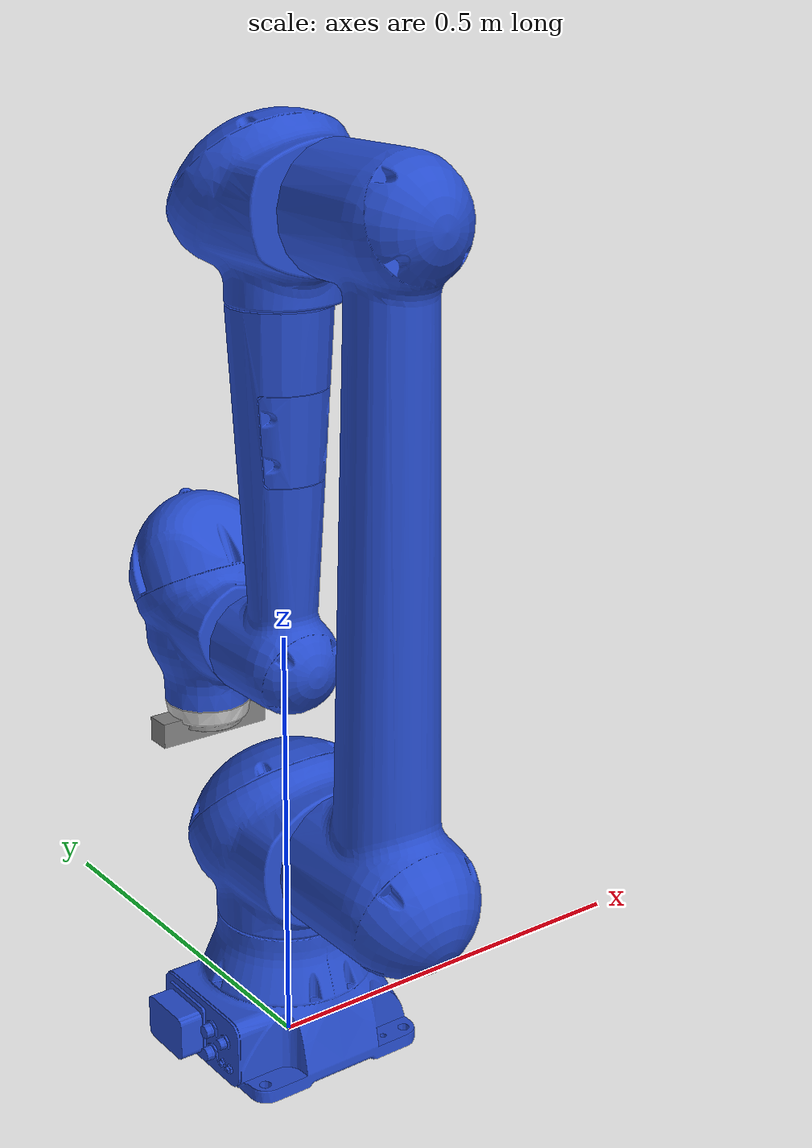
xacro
<?xml version="1.0" ?>
<robot name="motoman_hc10" xmlns:xacro="http://ros.org/wiki/xacro">
  <xacro:include filename="$(find motoman_hc10_support)/urdf/hc10_macro.xacro" />
  <xacro:motoman_hc10 prefix=""/>
  <xacro:include filename="$(find motoman_hc10_support)/urdf/hc10_gazebo.xacro"/>
  <xacro:include filename="$(find motoman_hc10_support)/urdf/hc10_cam.xacro"/>
  <xacro:add_cam parent_link="tool0"/>
</robot>

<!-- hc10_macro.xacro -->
<robot xmlns:xacro="http://ros.org/wiki/xacro">
  <xacro:macro name="motoman_hc10" params="prefix">
    <xacro:include filename="$(find motoman_resources)/urdf/common_materials.xacro"/>

    <!-- link list -->
    <link name="world"/>
      <inertial>
        <origin xyz="0 0 0" rpy="0 0 0"/>
        <mass value="0.1"/>
        <inertia ixx="0.03" ixy="0.03" ixz="0.03" iyy="0.0" iyz="0.0" izz="0.0"/>
      </inertial>
    <link name="${prefix}base_link">
      <inertial>
        <origin xyz="0 0 0" rpy="0 0 0"/>
        <mass value="0.1"/>
        <inertia ixx="0.03" ixy="0.03" ixz="0.03" iyy="0.0" iyz="0.0" izz="0.0"/>
      </inertial>
      <visual>
        <geometry>
          <mesh filename="package://motoman_hc10_support/meshes/hc10/visual/base_link.dae"/>
        </geometry>
        <xacro:material_yaskawa_blue/>
      </visual>
      <collision>
        <geometry>
          <mesh filename="package://motoman_hc10_support/meshes/hc10/collision/base_link.stl"/>
        </geometry>
      </collision>
    </link>
    <gazebo reference="${prefix}base_link">
      <material>Gazebo/Blue</material>
      <mu1>0.2</mu1>
      <mu2>0.2</mu2>
    </gazebo>

    <link name="${prefix}link_1_s">
      <inertial>
        <origin xyz="0 0 0" rpy="0 0 0"/>
        <mass value="0.1"/>
        <inertia ixx="0.03" ixy="0.03" ixz="0.03" iyy="0.0" iyz="0.0" izz="0.0"/>
      </inertial>
      <visual>
        <geometry>
          <mesh filename="package://motoman_hc10_support/meshes/hc10/visual/link_1_s.dae"/>
        </geometry>
        <xacro:material_yaskawa_blue/>
      </visual>
      <collision>
        <geometry>
          <mesh filename="package://motoman_hc10_support/meshes/hc10/collision/link_1_s.stl"/>
        </geometry>
      </collision>
    </link>
    <gazebo reference="${prefix}link_1_s">
      <material>Gazebo/Blue</material>
      <mu1>0.2</mu1>
      <mu2>0.2</mu2>
    </gazebo>

    <link name="${prefix}link_2_l">
      <inertial>
        <origin xyz="0 0 0" rpy="0 0 0"/>
        <mass value="0.1"/>
        <inertia ixx="0.03" ixy="0.03" ixz="0.03" iyy="0.0" iyz="0.0" izz="0.0"/>
      </inertial>
      <visual>
        <geometry>
          <mesh filename="package://motoman_hc10_support/meshes/hc10/visual/link_2_l.dae"/>
        </geometry>
        <xacro:material_yaskawa_blue/>
      </visual>
      <collision>
        <geometry>
          <mesh filename="package://motoman_hc10_support/meshes/hc10/collision/link_2_l.stl"/>
        </geometry>
      </collision>
    </link>
    <gazebo reference="${prefix}link_2_l">
      <material>Gazebo/Blue</material>
      <mu1>0.2</mu1>
      <mu2>0.2</mu2>
    </gazebo>

    <link name="${prefix}link_3_u">
      <inertial>
        <origin xyz="0 0 0" rpy="0 0 0"/>
        <mass value="0.1"/>
        <inertia ixx="0.03" ixy="0.03" ixz="0.03" iyy="0.0" iyz="0.0" izz="0.0"/>
      </inertial>
      <visual>
        <geometry>
          <mesh filename="package://motoman_hc10_support/meshes/hc10/visual/link_3_u.dae"/>
        </geometry>
        <xacro:material_yaskawa_blue/>
      </visual>
      <collision>
        <geometry>
          <mesh filename="package://motoman_hc10_support/meshes/hc10/collision/link_3_u.stl"/>
        </geometry>
      </collision>
    </link>
    <gazebo reference="${prefix}link_3_u">
      <material>Gazebo/Blue</material>
      <mu1>0.2</mu1>
      <mu2>0.2</mu2>
    </gazebo>

    <link name="${prefix}link_4_r">
      <inertial>
        <origin xyz="0 0 0" rpy="0 0 0"/>
        <mass value="0.1"/>
        <inertia ixx="0.03" ixy="0.03" ixz="0.03" iyy="0.0" iyz="0.0" izz="0.0"/>
      </inertial>
      <visual>
        <geometry>
          <mesh filename="package://motoman_hc10_support/meshes/hc10/visual/link_4_r.dae"/>
        </geometry>
        <xacro:material_yaskawa_blue/>
      </visual>
      <collision>
        <geometry>
          <mesh filename="package://motoman_hc10_support/meshes/hc10/collision/link_4_r.stl"/>
        </geometry>
      </collision>
    </link>
    <gazebo reference="${prefix}link_4_r">
      <material>Gazebo/Blue</material>
      <mu1>0.2</mu1>
      <mu2>0.2</mu2>
    </gazebo>

    <link name="${prefix}link_5_b">
      <inertial>
        <origin xyz="0 0 0" rpy="0 0 0"/>
        <mass value="0.1"/>
        <inertia ixx="0.03" ixy="0.03" ixz="0.03" iyy="0.0" iyz="0.0" izz="0.0"/>
      </inertial>
      <visual>
        <geometry>
          <mesh filename="package://motoman_hc10_support/meshes/hc10/visual/link_5_b.dae"/>
        </geometry>
        <xacro:material_yaskawa_blue/>
      </visual>
      <collision>
        <geometry>
          <mesh filename="package://motoman_hc10_support/meshes/hc10/collision/link_5_b.stl"/>
        </geometry>
      </collision>
    </link>
    <gazebo reference="${prefix}link_5_b">
      <material>Gazebo/Blue</material>
      <mu1>0.2</mu1>
      <mu2>0.2</mu2>
    </gazebo>

    <link name="${prefix}link_6_t">
      <inertial>
        <origin xyz="0 0 0" rpy="0 0 0"/>
        <mass value="0.1"/>
        <inertia ixx="0.03" ixy="0.03" ixz="0.03" iyy="0.0" iyz="0.0" izz="0.0"/>
      </inertial>
      <visual>
        <geometry>
          <mesh filename="package://motoman_hc10_support/meshes/hc10/visual/link_6_t.dae"/>
        </geometry>
        <xacro:material_yaskawa_blue/>
      </visual>
      <collision>
        <geometry>
          <mesh filename="package://motoman_hc10_support/meshes/hc10/collision/link_6_t.stl"/>
        </geometry>
      </collision>
    </link>
    <gazebo reference="${prefix}link_6_t">
      <material>G<axis xyz="0 0 0" rpy="0 0 0"/>
            <limit effort="10000" velocity="1000"/>
            <dynamics damping="1.0" friction="1.0"/>zebo/Blue</material>
      <mu1>0.2</mu1>
      <mu2>0.2</mu2>
    </gazebo>

    <link name="${prefix}tool0"/>
    <!-- end of link list -->

    <!-- joint list -->
    <joint name="world_fixed" type="fixed">
      <parent link="world"/>
      <child link="${prefix}base_link"/>
    </joint>
    <joint name="${prefix}joint_1_s" type="revolute">
      <parent link="${prefix}base_link"/>
      <child link="${prefix}link_1_s"/>
      <origin xyz="0 0 0.275" rpy="0 0 0" />
      <axis xyz="0 0 1" />
      <limit lower="${radians(-180)}" upper="${radians(180)}" effort="368.48" velocity="${radians(130)}"/>
      <dynamics damping="1"/>
    </joint>
    <joint name="${prefix}joint_2_l" type="revolute">
      <parent link="${prefix}link_1_s"/>
      <child link="${prefix}link_2_l"/>
      <origin xyz="0 0 0" rpy="0 0 0" />
      <axis xyz="0 1 0" />
      <limit lower="${radians(-180)}" upper="${radians(180)}" effort="368.48" velocity="${radians(130)}"/>
      <dynamics damping="1"/>
    </joint>
    <joint name="${prefix}joint_3_u" type="revolute">
      <parent link="${prefix}link_2_l"/>
      <child link="${prefix}link_3_u"/>
      <origin xyz="0 0 0.700" rpy="0 0 0" />
      <axis xyz="0 -1 0" />
      <limit lower="${radians(-5)}" upper="${radians(355)}" effort="141.12" velocity="${radians(180)}"/>
      <dynamics damping="1"/>
    </joint>
    <joint name="${prefix}joint_4_r" type="revolute">
      <parent link="${prefix}link_3_u"/>
      <child link="${prefix}link_4_r"/>
      <origin xyz="0 0 -0.500" rpy="0 0 0" />
      <axis xyz="0 0 1" />
      <limit lower="${radians(-180)}" upper="${radians(180)}" effort="39.20" velocity="${radians(180)}"/>
      <dynamics damping="1"/>
    </joint>
    <joint name="${prefix}joint_5_b" type="revolute">
      <parent link="${prefix}link_4_r"/>
      <child link="${prefix}link_5_b"/>
      <origin xyz="0 0.162 0" rpy="0 0 0" />
      <axis xyz="0 -1 0" />
      <limit lower="${radians(-180)}" upper="${radians(180)}" effort="31.36" velocity="${radians(250)}"/>
      <dynamics damping="1"/>
    </joint>
    <joint name="${prefix}joint_6_t" type="revolute">
      <parent link="${prefix}link_5_b"/>
      <child link="${prefix}link_6_t"/>
      <origin xyz="0 0 0" rpy="0 0 0" />
      <axis xyz="0 0 1" />
      <limit lower="${radians(-180)}" upper="${radians(180)}" effort="31.36" velocity="${radians(250)}"/>
      <dynamics damping="1"/>
    </joint>
    <joint name="${prefix}joint_6_t-tool0" type="fixed">
      <origin xyz="0 0 -0.130" rpy="${pi} 0 0"/>
      <parent link="${prefix}link_6_t"/>
      <child link="${prefix}tool0"/>
    </joint>
    <!-- end of joint list -->

    <!-- ROS base_link to Robot Manufacturer World Coordinates transform -->
    <link name="${prefix}base" />
    <joint name="${prefix}base_link-base" type="fixed">
      <origin xyz="0 0 0.275" rpy="0 0 0"/>
      <parent link="${prefix}base_link"/>
      <child link="${prefix}base"/>
    </joint>
  </xacro:macro>
</robot>

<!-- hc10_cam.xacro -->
<robot xmlns:xacro="http://ros.org/wiki/xacro">
    <xacro:macro name="add_cam" params="parent_link">
        <gazebo reference="camera_link">
            <sensor name="kinect_camera" type="depth">
                <update_rate>20</update_rate>
                <camera>
                    <horizontal_fov>1.047198</horizontal_fov>
                    <image>
                        <width>640</width>
                        <height>480</height>
                        <format>B8G8R8</format>
                    </image>
                    <clip>
                        <near>0.05</near>
                        <far>3</far>
                    </clip>
                </camera>
                <plugin name="kinect_controller" filename="libgazebo_ros_openni_kinect.so">
                <baseline>0.1</baseline>
                <alwaysOn>true</alwaysOn>
                <updateRate>10</updateRate>
                <cameraName>camera_ir</cameraName>
                <imageTopicName>/camera/color/image_raw</imageTopicName>
                <cameraInfoTopicName>/camera/color/camera_info</cameraInfoTopicName>
                <depthImageTopicName>/camera/depth/image_raw</depthImageTopicName>
                <depthImageCameraInfoTopicName>/camera/depth/camera_info</depthImageCameraInfoTopicName>
                <pointCloudTopicName>/camera/depth/points</pointCloudTopicName>
                <frameName>camera_link</frameName>
                <distortion_k1>0.0</distortion_k1>
                <distortion_k2>0.0</distortion_k2>
                <distortion_k3>0.0</distortion_k3>
                <distortion_t1>0.0</distortion_t1>
                <distortion_t2>0.0</distortion_t2>
                <pointCloudCutoff>0.16</pointCloudCutoff>
                <pointCloudCutoffMax>10.0</pointCloudCutoffMax>
                </plugin>
            </sensor>
        </gazebo>

        <link name="camera_link">
            <visual>
                <origin xyz="0 0 0" rpy="0 0 0"/>
                <geometry>
                    <box size="0.14 0.03 0.03"/>
                </geometry>
                <material name="Grey"><color rgba="0.5 0.5 0.5 1"/></material>
            </visual>
        </link>

        <joint type="fixed" name="camera_joint">
            <origin xyz="0 0 0" rpy="0 0 0"/>
            <child link="camera_link"/>
            <parent link="${parent_link}"/>
        </joint>
    </xacro:macro>
</robot>
